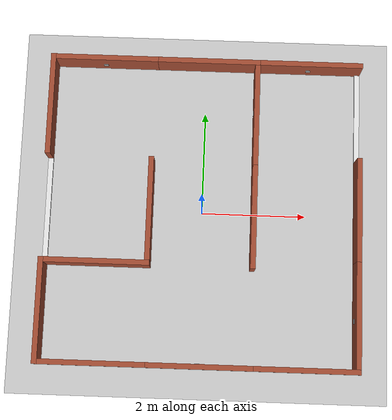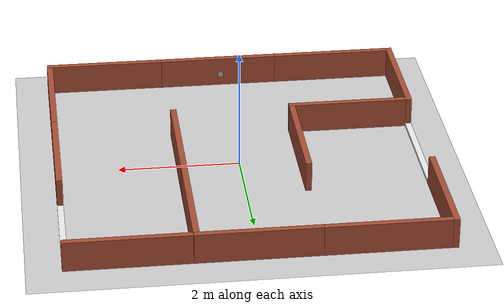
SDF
<sdf version="1.6">
 <world name="default">
  <light name="sun" type="directional">
   <pose>0 0 10 0 -0 0</pose>
   <diffuse>0.8 0.8 0.8 1</diffuse>
   <specular>0.2 0.2 0.2 1</specular>
   <attenuation>
    <range>1000</range>
    <constant>0.9</constant>
    <linear>0.01</linear>
    <quadratic>0.001</quadratic>
   </attenuation>
   <direction>-0.5 0.1 -0.9</direction>
  </light>
  <model name="ground_plane">
   <static>1</static>
   <link name="link">
    <collision name="collision">
     <geometry><plane><normal>0 0 1</normal><size>100 100</size></plane></geometry>
     <surface>
      <contact><collide_bitmask>65535</collide_bitmask></contact>
      <friction><ode><mu>100</mu><mu2>50</mu2></ode></friction>
     </surface>
    </collision>
    <visual name="visual">
     <cast_shadows>0</cast_shadows>
     <geometry><plane><normal>0 0 1</normal><size>100 100</size></plane></geometry>
     <material>
      <script><uri>file://media/materials/scripts/gazebo.material</uri><name>Gazebo/Grey</name></script>
     </material>
    </visual>
   </link>
  </model>
  <gravity>0 0 -9.8</gravity>
  <magnetic_field>6e-06 2.3e-05 -4.2e-05</magnetic_field>
  <atmosphere type="adiabatic"/>
  <physics name="default_physics" default="0" type="ode">
   <max_step_size>0.001</max_step_size>
   <real_time_factor>1</real_time_factor>
   <real_time_update_rate>1000</real_time_update_rate>
  </physics>
  <scene><ambient>0.4 0.4 0.4 1</ambient><background>0.7 0.7 0.7 1</background><shadows>1</shadows></scene>
  <audio><device>default</device></audio>
  <spherical_coordinates>
   <surface_model>EARTH_WGS84</surface_model>
   <latitude_deg>0</latitude_deg>
   <longitude_deg>0</longitude_deg>
   <elevation>0</elevation>
   <heading_deg>0</heading_deg>
  </spherical_coordinates>
  <model name="ar">
   <link name="link_0">
    <inertial>
     <mass>1</mass>
     <inertia>
      <ixx>0.166667</ixx>
      <ixy>0</ixy>
      <ixz>0</ixz>
      <iyy>0.166667</iyy>
      <iyz>0</iyz>
      <izz>0.166667</izz>
     </inertia>
    </inertial>
    <visual name="visual">
     <geometry><mesh><uri>file://meshes/ar1.dae</uri><scale>1 1 1</scale></mesh></geometry>
     <material>
      <lighting>1</lighting>
      <script><uri>file://media/materials/scripts/ArTag4.material</uri><name>RoboTont/ArTag4</name></script>
      <shader type="vertex"><normal_map>__default__</normal_map></shader>
      <ambient>0.3 0.3 0.3 1</ambient>
      <diffuse>0.7 0.7 0.7 1</diffuse>
      <specular>0.01 0.01 0.01 1</specular>
      <emissive>0.5 0.5 0.5 1</emissive>
     </material>
    </visual>
    <collision name="collision">
     <geometry><mesh><uri>file://meshes/ar1.dae</uri><scale>1 1 1</scale></mesh></geometry>
     <surface>
      <friction>
       <ode><mu>1</mu><mu2>1</mu2><fdir1>0 0 0</fdir1><slip1>0</slip1><slip2>0</slip2></ode>
       <torsional>
        <coefficient>1</coefficient>
        <patch_radius>0</patch_radius>
        <surface_radius>0</surface_radius>
        <use_patch_radius>1</use_patch_radius>
        <ode><slip>0</slip></ode>
       </torsional>
      </friction>
      <bounce><restitution_coefficient>0</restitution_coefficient><threshold>1e+06</threshold></bounce>
      <contact>
       <collide_without_contact>0</collide_without_contact>
       <collide_without_contact_bitmask>1</collide_without_contact_bitmask>
       <collide_bitmask>1</collide_bitmask>
       <ode>
        <soft_cfm>0</soft_cfm>
        <soft_erp>0.2</soft_erp>
        <kp>1e+13</kp>
        <kd>1</kd>
        <max_vel>0.01</max_vel>
        <min_depth>0</min_depth>
       </ode>
       <bullet>
        <split_impulse>1</split_impulse>
        <split_impulse_penetration_threshold>-0.01</split_impulse_penetration_threshold>
        <soft_cfm>0</soft_cfm>
        <soft_erp>0.2</soft_erp>
        <kp>1e+13</kp>
        <kd>1</kd>
       </bullet>
      </contact>
     </surface>
    </collision>
   </link>
   <static>1</static>
   <pose>2.94 -2 0.2 0 -0 0</pose>
  </model>
  <model name="minimaze">
   <link name="link_0">
    <inertial>
     <mass>1</mass>
     <inertia>
      <ixx>0.166667</ixx>
      <ixy>0</ixy>
      <ixz>0</ixz>
      <iyy>0.166667</iyy>
      <iyz>0</iyz>
      <izz>0.166667</izz>
     </inertia>
    </inertial>
    <pose>-2.95321 -1.925 0 0 -0 0</pose>
    <visual name="visual">
     <geometry><mesh><uri>file://meshes/bricks1.dae</uri><scale>1 1 1</scale></mesh></geometry>
     <material>
      <lighting>1</lighting>
      <script>
       <uri>file://media/materials/scripts/WhiteBricks.material</uri>
       <name>RoboTont/WhiteBricks</name>
      </script>
      <shader type="vertex"><normal_map>__default__</normal_map></shader>
      <ambient>0.3 0.3 0.3 1</ambient>
      <diffuse>0.7 0.7 0.7 1</diffuse>
      <specular>0.01 0.01 0.01 1</specular>
      <emissive>0.5 0.5 0.5 1</emissive>
     </material>
    </visual>
    <collision name="collision">
     <geometry><mesh><uri>file://meshes/bricks1.dae</uri><scale>1 1 1</scale></mesh></geometry>
     <surface>
      <friction>
       <ode><mu>1</mu><mu2>1</mu2><fdir1>0 0 0</fdir1><slip1>0</slip1><slip2>0</slip2></ode>
       <torsional>
        <coefficient>1</coefficient>
        <patch_radius>0</patch_radius>
        <surface_radius>0</surface_radius>
        <use_patch_radius>1</use_patch_radius>
        <ode><slip>0</slip></ode>
       </torsional>
      </friction>
      <bounce><restitution_coefficient>0</restitution_coefficient><threshold>1e+06</threshold></bounce>
      <contact>
       <collide_without_contact>0</collide_without_contact>
       <collide_without_contact_bitmask>1</collide_without_contact_bitmask>
       <collide_bitmask>1</collide_bitmask>
       <ode>
        <soft_cfm>0</soft_cfm>
        <soft_erp>0.2</soft_erp>
        <kp>1e+13</kp>
        <kd>1</kd>
        <max_vel>0.01</max_vel>
        <min_depth>0</min_depth>
       </ode>
       <bullet>
        <split_impulse>1</split_impulse>
        <split_impulse_penetration_threshold>-0.01</split_impulse_penetration_threshold>
        <soft_cfm>0</soft_cfm>
        <soft_erp>0.2</soft_erp>
        <kp>1e+13</kp>
        <kd>1</kd>
       </bullet>
      </contact>
     </surface>
    </collision>
   </link>
   <link name="link_0_0">
    <inertial>
     <mass>0.00194483</mass>
     <inertia>
      <ixx>0.00047544</ixx>
      <ixy>0</ixy>
      <ixz>0</ixz>
      <iyy>4.8e-07</iyy>
      <iyz>0</iyz>
      <izz>0.00047572</izz>
     </inertia>
    </inertial>
    <pose>-2.95321 0.074599 -0.227011 -3.8e-05 -1e-05 0</pose>
    <visual name="visual">
     <geometry><box><size>0.1 2 0.05</size></box></geometry>
     <material>
      <lighting>1</lighting>
      <script><uri>file://media/materials/scripts/gazebo.material</uri><name>Gazebo/White</name></script>
      <shader type="vertex"><normal_map>__default__</normal_map></shader>
      <ambient>0.3 0.3 0.3 1</ambient>
      <diffuse>0.7 0.7 0.7 1</diffuse>
      <specular>0.01 0.01 0.01 1</specular>
      <emissive>0.4 0.4 0.4 1</emissive>
     </material>
    </visual>
    <collision name="collision">
     <geometry><box><size>0.099999 2 0.05</size></box></geometry>
     <surface>
      <friction>
       <ode><mu>1</mu><mu2>1</mu2><fdir1>0 0 0</fdir1><slip1>0</slip1><slip2>0</slip2></ode>
       <torsional>
        <coefficient>1</coefficient>
        <patch_radius>0</patch_radius>
        <surface_radius>0</surface_radius>
        <use_patch_radius>1</use_patch_radius>
        <ode><slip>0</slip></ode>
       </torsional>
      </friction>
      <bounce><restitution_coefficient>0</restitution_coefficient><threshold>1e+06</threshold></bounce>
      <contact>
       <collide_without_contact>0</collide_without_contact>
       <collide_without_contact_bitmask>1</collide_without_contact_bitmask>
       <collide_bitmask>1</collide_bitmask>
       <ode>
        <soft_cfm>0</soft_cfm>
        <soft_erp>0.2</soft_erp>
        <kp>1e+13</kp>
        <kd>1</kd>
        <max_vel>0.01</max_vel>
        <min_depth>0</min_depth>
       </ode>
       <bullet>
        <split_impulse>1</split_impulse>
        <split_impulse_penetration_threshold>-0.01</split_impulse_penetration_threshold>
        <soft_cfm>0</soft_cfm>
        <soft_erp>0.2</soft_erp>
        <kp>1e+13</kp>
        <kd>1</kd>
       </bullet>
      </contact>
     </surface>
    </collision>
   </link>
   <link name="link_0_0_clone">
    <inertial>
     <mass>0.00177554</mass>
     <inertia>
      <ixx>0.00049366</ixx>
      <ixy>0</ixy>
      <ixz>0</ixz>
      <iyy>3.8e-07</iyy>
      <iyz>0</iyz>
      <izz>0.00049331</izz>
     </inertia>
    </inertial>
    <pose>3.04679 2.07373 -0.227011 -7.6e-05 -2e-05 -0</pose>
    <visual name="visual_0">
     <geometry><box><size>0.1 1.801 0.05</size></box></geometry>
     <material>
      <lighting>1</lighting>
      <script><uri>file://media/materials/scripts/gazebo.material</uri><name>Gazebo/White</name></script>
      <shader type="vertex"><normal_map>__default__</normal_map></shader>
      <ambient>0.3 0.3 0.3 1</ambient>
      <diffuse>0.7 0.7 0.7 1</diffuse>
      <specular>0.01 0.01 0.01 1</specular>
      <emissive>0.4 0.4 0.4 1</emissive>
     </material>
    </visual>
    <collision name="collision">
     <geometry><box><size>0.1 1.801 0.05</size></box></geometry>
     <surface>
      <friction>
       <ode><mu>1</mu><mu2>1</mu2><fdir1>0 0 0</fdir1><slip1>0</slip1><slip2>0</slip2></ode>
       <torsional>
        <coefficient>1</coefficient>
        <patch_radius>0</patch_radius>
        <surface_radius>0</surface_radius>
        <use_patch_radius>1</use_patch_radius>
        <ode><slip>0</slip></ode>
       </torsional>
      </friction>
      <bounce><restitution_coefficient>0</restitution_coefficient><threshold>1e+06</threshold></bounce>
      <contact>
       <collide_without_contact>0</collide_without_contact>
       <collide_without_contact_bitmask>1</collide_without_contact_bitmask>
       <collide_bitmask>1</collide_bitmask>
       <ode>
        <soft_cfm>0</soft_cfm>
        <soft_erp>0.2</soft_erp>
        <kp>1e+13</kp>
        <kd>1</kd>
        <max_vel>0.01</max_vel>
        <min_depth>0</min_depth>
       </ode>
       <bullet>
        <split_impulse>1</split_impulse>
        <split_impulse_penetration_threshold>-0.01</split_impulse_penetration_threshold>
        <soft_cfm>0</soft_cfm>
        <soft_erp>0.2</soft_erp>
        <kp>1e+13</kp>
        <kd>1</kd>
       </bullet>
      </contact>
     </surface>
    </collision>
   </link>
   <link name="link_0_clone">
    <inertial>
     <mass>1</mass>
     <inertia>
      <ixx>0.166667</ixx>
      <ixy>0</ixy>
      <ixz>0</ixz>
      <iyy>0.166667</iyy>
      <iyz>0</iyz>
      <izz>0.166667</izz>
     </inertia>
    </inertial>
    <pose>-2.95321 2.075 0 0 -0 0</pose>
    <visual name="visual">
     <geometry><mesh><uri>file://meshes/bricks1.dae</uri><scale>1 1 1</scale></mesh></geometry>
     <material>
      <lighting>1</lighting>
      <script>
       <uri>file://media/materials/scripts/WhiteBricks.material</uri>
       <name>RoboTont/WhiteBricks</name>
      </script>
      <shader type="vertex"><normal_map>__default__</normal_map></shader>
      <ambient>0.3 0.3 0.3 1</ambient>
      <diffuse>0.7 0.7 0.7 1</diffuse>
      <specular>0.01 0.01 0.01 1</specular>
      <emissive>0.5 0.5 0.5 1</emissive>
     </material>
    </visual>
    <collision name="collision">
     <geometry><mesh><uri>file://meshes/bricks1.dae</uri><scale>1 1 1</scale></mesh></geometry>
     <surface>
      <friction>
       <ode><mu>1</mu><mu2>1</mu2><fdir1>0 0 0</fdir1><slip1>0</slip1><slip2>0</slip2></ode>
       <torsional>
        <coefficient>1</coefficient>
        <patch_radius>0</patch_radius>
        <surface_radius>0</surface_radius>
        <use_patch_radius>1</use_patch_radius>
        <ode><slip>0</slip></ode>
       </torsional>
      </friction>
      <bounce><restitution_coefficient>0</restitution_coefficient><threshold>1e+06</threshold></bounce>
      <contact>
       <collide_without_contact>0</collide_without_contact>
       <collide_without_contact_bitmask>1</collide_without_contact_bitmask>
       <collide_bitmask>1</collide_bitmask>
       <ode>
        <soft_cfm>0</soft_cfm>
        <soft_erp>0.2</soft_erp>
        <kp>1e+13</kp>
        <kd>1</kd>
        <max_vel>0.01</max_vel>
        <min_depth>0</min_depth>
       </ode>
       <bullet>
        <split_impulse>1</split_impulse>
        <split_impulse_penetration_threshold>-0.01</split_impulse_penetration_threshold>
        <soft_cfm>0</soft_cfm>
        <soft_erp>0.2</soft_erp>
        <kp>1e+13</kp>
        <kd>1</kd>
       </bullet>
      </contact>
     </surface>
    </collision>
   </link>
   <link name="link_0_clone_0">
    <inertial>
     <mass>1</mass>
     <inertia>
      <ixx>0.166667</ixx>
      <ixy>0</ixy>
      <ixz>0</ixz>
      <iyy>0.166667</iyy>
      <iyz>0</iyz>
      <izz>0.166667</izz>
     </inertia>
    </inertial>
    <pose>3.04679 -1.825 -0 0 -0 0</pose>
    <visual name="visual">
     <geometry><mesh><uri>file://meshes/bricks1.dae</uri><scale>1 1 1</scale></mesh></geometry>
     <material>
      <lighting>1</lighting>
      <script>
       <uri>file://media/materials/scripts/WhiteBricks.material</uri>
       <name>RoboTont/WhiteBricks</name>
      </script>
      <shader type="vertex"><normal_map>__default__</normal_map></shader>
      <ambient>0.3 0.3 0.3 1</ambient>
      <diffuse>0.7 0.7 0.7 1</diffuse>
      <specular>0.01 0.01 0.01 1</specular>
      <emissive>0.5 0.5 0.5 1</emissive>
     </material>
    </visual>
    <collision name="collision">
     <geometry><mesh><uri>file://meshes/bricks1.dae</uri><scale>1 1 1</scale></mesh></geometry>
     <surface>
      <friction>
       <ode><mu>1</mu><mu2>1</mu2><fdir1>0 0 0</fdir1><slip1>0</slip1><slip2>0</slip2></ode>
       <torsional>
        <coefficient>1</coefficient>
        <patch_radius>0</patch_radius>
        <surface_radius>0</surface_radius>
        <use_patch_radius>1</use_patch_radius>
        <ode><slip>0</slip></ode>
       </torsional>
      </friction>
      <bounce><restitution_coefficient>0</restitution_coefficient><threshold>1e+06</threshold></bounce>
      <contact>
       <collide_without_contact>0</collide_without_contact>
       <collide_without_contact_bitmask>1</collide_without_contact_bitmask>
       <collide_bitmask>1</collide_bitmask>
       <ode>
        <soft_cfm>0</soft_cfm>
        <soft_erp>0.2</soft_erp>
        <kp>1e+13</kp>
        <kd>1</kd>
        <max_vel>0.01</max_vel>
        <min_depth>0</min_depth>
       </ode>
       <bullet>
        <split_impulse>1</split_impulse>
        <split_impulse_penetration_threshold>-0.01</split_impulse_penetration_threshold>
        <soft_cfm>0</soft_cfm>
        <soft_erp>0.2</soft_erp>
        <kp>1e+13</kp>
        <kd>1</kd>
       </bullet>
      </contact>
     </surface>
    </collision>
   </link>
   <link name="link_0_clone_1">
    <inertial>
     <mass>1</mass>
     <inertia>
      <ixx>0.166667</ixx>
      <ixy>0</ixy>
      <ixz>0</ixz>
      <iyy>0.166667</iyy>
      <iyz>0</iyz>
      <izz>0.166667</izz>
     </inertia>
    </inertial>
    <pose>3.04679 0.175 0 0 -0 0</pose>
    <visual name="visual">
     <geometry><mesh><uri>file://meshes/bricks1.dae</uri><scale>1 1 1</scale></mesh></geometry>
     <material>
      <lighting>1</lighting>
      <script>
       <uri>file://media/materials/scripts/WhiteBricks.material</uri>
       <name>RoboTont/WhiteBricks</name>
      </script>
      <shader type="vertex"><normal_map>__default__</normal_map></shader>
      <ambient>0.3 0.3 0.3 1</ambient>
      <diffuse>0.7 0.7 0.7 1</diffuse>
      <specular>0.01 0.01 0.01 1</specular>
      <emissive>0.5 0.5 0.5 1</emissive>
     </material>
    </visual>
    <collision name="collision">
     <geometry><mesh><uri>file://meshes/bricks1.dae</uri><scale>1 1 1</scale></mesh></geometry>
     <surface>
      <friction>
       <ode><mu>1</mu><mu2>1</mu2><fdir1>0 0 0</fdir1><slip1>0</slip1><slip2>0</slip2></ode>
       <torsional>
        <coefficient>1</coefficient>
        <patch_radius>0</patch_radius>
        <surface_radius>0</surface_radius>
        <use_patch_radius>1</use_patch_radius>
        <ode><slip>0</slip></ode>
       </torsional>
      </friction>
      <bounce><restitution_coefficient>0</restitution_coefficient><threshold>1e+06</threshold></bounce>
      <contact>
       <collide_without_contact>0</collide_without_contact>
       <collide_without_contact_bitmask>1</collide_without_contact_bitmask>
       <collide_bitmask>1</collide_bitmask>
       <ode>
        <soft_cfm>0</soft_cfm>
        <soft_erp>0.2</soft_erp>
        <kp>1e+13</kp>
        <kd>1</kd>
        <max_vel>0.01</max_vel>
        <min_depth>0</min_depth>
       </ode>
       <bullet>
        <split_impulse>1</split_impulse>
        <split_impulse_penetration_threshold>-0.01</split_impulse_penetration_threshold>
        <soft_cfm>0</soft_cfm>
        <soft_erp>0.2</soft_erp>
        <kp>1e+13</kp>
        <kd>1</kd>
       </bullet>
      </contact>
     </surface>
    </collision>
   </link>
   <link name="link_0_clone_1_clone">
    <inertial>
     <mass>1</mass>
     <inertia>
      <ixx>0.166667</ixx>
      <ixy>0</ixy>
      <ixz>0</ixz>
      <iyy>0.166667</iyy>
      <iyz>0</iyz>
      <izz>0.166667</izz>
     </inertia>
    </inertial>
    <pose>1.04679 1.975 -0 0 -0 0</pose>
    <visual name="visual">
     <geometry><mesh><uri>file://meshes/bricks1.dae</uri><scale>1 1 1</scale></mesh></geometry>
     <material>
      <lighting>1</lighting>
      <script>
       <uri>file://media/materials/scripts/WhiteBricks.material</uri>
       <name>RoboTont/WhiteBricks</name>
      </script>
      <shader type="vertex"><normal_map>__default__</normal_map></shader>
      <ambient>0.3 0.3 0.3 1</ambient>
      <diffuse>0.7 0.7 0.7 1</diffuse>
      <specular>0.01 0.01 0.01 1</specular>
      <emissive>0.5 0.5 0.5 1</emissive>
     </material>
    </visual>
    <collision name="collision">
     <geometry><mesh><uri>file://meshes/bricks1.dae</uri><scale>1 1 1</scale></mesh></geometry>
     <surface>
      <friction>
       <ode><mu>1</mu><mu2>1</mu2><fdir1>0 0 0</fdir1><slip1>0</slip1><slip2>0</slip2></ode>
       <torsional>
        <coefficient>1</coefficient>
        <patch_radius>0</patch_radius>
        <surface_radius>0</surface_radius>
        <use_patch_radius>1</use_patch_radius>
        <ode><slip>0</slip></ode>
       </torsional>
      </friction>
      <bounce><restitution_coefficient>0</restitution_coefficient><threshold>1e+06</threshold></bounce>
      <contact>
       <collide_without_contact>0</collide_without_contact>
       <collide_without_contact_bitmask>1</collide_without_contact_bitmask>
       <collide_bitmask>1</collide_bitmask>
       <ode>
        <soft_cfm>0</soft_cfm>
        <soft_erp>0.2</soft_erp>
        <kp>1e+13</kp>
        <kd>1</kd>
        <max_vel>0.01</max_vel>
        <min_depth>0</min_depth>
       </ode>
       <bullet>
        <split_impulse>1</split_impulse>
        <split_impulse_penetration_threshold>-0.01</split_impulse_penetration_threshold>
        <soft_cfm>0</soft_cfm>
        <soft_erp>0.2</soft_erp>
        <kp>1e+13</kp>
        <kd>1</kd>
       </bullet>
      </contact>
     </surface>
    </collision>
   </link>
   <link name="link_0_clone_1_clone_0">
    <inertial>
     <mass>1</mass>
     <inertia>
      <ixx>0.166667</ixx>
      <ixy>0</ixy>
      <ixz>0</ixz>
      <iyy>0.166667</iyy>
      <iyz>0</iyz>
      <izz>0.166667</izz>
     </inertia>
    </inertial>
    <pose>1.04679 -0.025 0 0 -0 0</pose>
    <visual name="visual">
     <geometry><mesh><uri>file://meshes/bricks1.dae</uri><scale>1 1 1</scale></mesh></geometry>
     <material>
      <lighting>1</lighting>
      <script>
       <uri>file://media/materials/scripts/WhiteBricks.material</uri>
       <name>RoboTont/WhiteBricks</name>
      </script>
      <shader type="vertex"><normal_map>__default__</normal_map></shader>
      <ambient>0.3 0.3 0.3 1</ambient>
      <diffuse>0.7 0.7 0.7 1</diffuse>
      <specular>0.01 0.01 0.01 1</specular>
      <emissive>0.5 0.5 0.5 1</emissive>
     </material>
    </visual>
    <collision name="collision">
     <geometry><mesh><uri>file://meshes/bricks1.dae</uri><scale>1 1 1</scale></mesh></geometry>
     <surface>
      <friction>
       <ode><mu>1</mu><mu2>1</mu2><fdir1>0 0 0</fdir1><slip1>0</slip1><slip2>0</slip2></ode>
       <torsional>
        <coefficient>1</coefficient>
        <patch_radius>0</patch_radius>
        <surface_radius>0</surface_radius>
        <use_patch_radius>1</use_patch_radius>
        <ode><slip>0</slip></ode>
       </torsional>
      </friction>
      <bounce><restitution_coefficient>0</restitution_coefficient><threshold>1e+06</threshold></bounce>
      <contact>
       <collide_without_contact>0</collide_without_contact>
       <collide_without_contact_bitmask>1</collide_without_contact_bitmask>
       <collide_bitmask>1</collide_bitmask>
       <ode>
        <soft_cfm>0</soft_cfm>
        <soft_erp>0.2</soft_erp>
        <kp>1e+13</kp>
        <kd>1</kd>
        <max_vel>0.01</max_vel>
        <min_depth>0</min_depth>
       </ode>
       <bullet>
        <split_impulse>1</split_impulse>
        <split_impulse_penetration_threshold>-0.01</split_impulse_penetration_threshold>
        <soft_cfm>0</soft_cfm>
        <soft_erp>0.2</soft_erp>
        <kp>1e+13</kp>
        <kd>1</kd>
       </bullet>
      </contact>
     </surface>
    </collision>
   </link>
   <link name="link_0_clone_1_clone_1">
    <inertial>
     <mass>1</mass>
     <inertia>
      <ixx>0.166667</ixx>
      <ixy>0</ixy>
      <ixz>0</ixz>
      <iyy>0.166667</iyy>
      <iyz>0</iyz>
      <izz>0.166667</izz>
     </inertia>
    </inertial>
    <pose>-0.953214 0.075 -0 0 -0 0</pose>
    <visual name="visual">
     <geometry><mesh><uri>file://meshes/bricks1.dae</uri><scale>1 1 1</scale></mesh></geometry>
     <material>
      <lighting>1</lighting>
      <script>
       <uri>file://media/materials/scripts/WhiteBricks.material</uri>
       <name>RoboTont/WhiteBricks</name>
      </script>
      <shader type="vertex"><normal_map>__default__</normal_map></shader>
      <ambient>0.3 0.3 0.3 1</ambient>
      <diffuse>0.7 0.7 0.7 1</diffuse>
      <specular>0.01 0.01 0.01 1</specular>
      <emissive>0.5 0.5 0.5 1</emissive>
     </material>
    </visual>
    <collision name="collision">
     <geometry><mesh><uri>file://meshes/bricks1.dae</uri><scale>1 1 1</scale></mesh></geometry>
     <surface>
      <friction>
       <ode><mu>1</mu><mu2>1</mu2><fdir1>0 0 0</fdir1><slip1>0</slip1><slip2>0</slip2></ode>
       <torsional>
        <coefficient>1</coefficient>
        <patch_radius>0</patch_radius>
        <surface_radius>0</surface_radius>
        <use_patch_radius>1</use_patch_radius>
        <ode><slip>0</slip></ode>
       </torsional>
      </friction>
      <bounce><restitution_coefficient>0</restitution_coefficient><threshold>1e+06</threshold></bounce>
      <contact>
       <collide_without_contact>0</collide_without_contact>
       <collide_without_contact_bitmask>1</collide_without_contact_bitmask>
       <collide_bitmask>1</collide_bitmask>
       <ode>
        <soft_cfm>0</soft_cfm>
        <soft_erp>0.2</soft_erp>
        <kp>1e+13</kp>
        <kd>1</kd>
        <max_vel>0.01</max_vel>
        <min_depth>0</min_depth>
       </ode>
       <bullet>
        <split_impulse>1</split_impulse>
        <split_impulse_penetration_threshold>-0.01</split_impulse_penetration_threshold>
        <soft_cfm>0</soft_cfm>
        <soft_erp>0.2</soft_erp>
        <kp>1e+13</kp>
        <kd>1</kd>
       </bullet>
      </contact>
     </surface>
    </collision>
   </link>
   <link name="link_1">
    <inertial>
     <mass>1</mass>
     <inertia>
      <ixx>0.166667</ixx>
      <ixy>0</ixy>
      <ixz>0</ixz>
      <iyy>0.166667</iyy>
      <iyz>0</iyz>
      <izz>0.166667</izz>
     </inertia>
    </inertial>
    <pose>-1.90321 -0.975 0 0 -0 0</pose>
    <visual name="visual">
     <geometry><mesh><uri>file://meshes/bricks2.dae</uri><scale>1 1 1</scale></mesh></geometry>
     <material>
      <lighting>1</lighting>
      <script>
       <uri>file://media/materials/scripts/WhiteBricks.material</uri>
       <name>RoboTont/WhiteBricks</name>
      </script>
      <shader type="vertex"><normal_map>__default__</normal_map></shader>
      <ambient>0.3 0.3 0.3 1</ambient>
      <diffuse>0.7 0.7 0.7 1</diffuse>
      <specular>0.01 0.01 0.01 1</specular>
      <emissive>0.5 0.5 0.5 1</emissive>
     </material>
    </visual>
    <collision name="collision">
     <geometry><mesh><uri>file://meshes/bricks2.dae</uri><scale>1 1 1</scale></mesh></geometry>
     <surface>
      <friction>
       <ode><mu>1</mu><mu2>1</mu2><fdir1>0 0 0</fdir1><slip1>0</slip1><slip2>0</slip2></ode>
       <torsional>
        <coefficient>1</coefficient>
        <patch_radius>0</patch_radius>
        <surface_radius>0</surface_radius>
        <use_patch_radius>1</use_patch_radius>
        <ode><slip>0</slip></ode>
       </torsional>
      </friction>
      <bounce><restitution_coefficient>0</restitution_coefficient><threshold>1e+06</threshold></bounce>
      <contact>
       <collide_without_contact>0</collide_without_contact>
       <collide_without_contact_bitmask>1</collide_without_contact_bitmask>
       <collide_bitmask>1</collide_bitmask>
       <ode>
        <soft_cfm>0</soft_cfm>
        <soft_erp>0.2</soft_erp>
        <kp>1e+13</kp>
        <kd>1</kd>
        <max_vel>0.01</max_vel>
        <min_depth>0</min_depth>
       </ode>
       <bullet>
        <split_impulse>1</split_impulse>
        <split_impulse_penetration_threshold>-0.01</split_impulse_penetration_threshold>
        <soft_cfm>0</soft_cfm>
        <soft_erp>0.2</soft_erp>
        <kp>1e+13</kp>
        <kd>1</kd>
       </bullet>
      </contact>
     </surface>
    </collision>
   </link>
   <link name="link_1_clone">
    <inertial>
     <mass>1</mass>
     <inertia>
      <ixx>0.166667</ixx>
      <ixy>0</ixy>
      <ixz>0</ixz>
      <iyy>0.166667</iyy>
      <iyz>0</iyz>
      <izz>0.166667</izz>
     </inertia>
    </inertial>
    <pose>-1.90321 -2.875 0 0 -0 0</pose>
    <visual name="visual">
     <geometry><mesh><uri>file://meshes/bricks2.dae</uri><scale>1 1 1</scale></mesh></geometry>
     <material>
      <lighting>1</lighting>
      <script>
       <uri>file://media/materials/scripts/WhiteBricks.material</uri>
       <name>RoboTont/WhiteBricks</name>
      </script>
      <shader type="vertex"><normal_map>__default__</normal_map></shader>
      <ambient>0.3 0.3 0.3 1</ambient>
      <diffuse>0.7 0.7 0.7 1</diffuse>
      <specular>0.01 0.01 0.01 1</specular>
      <emissive>0.5 0.5 0.5 1</emissive>
     </material>
    </visual>
    <collision name="collision">
     <geometry><mesh><uri>file://meshes/bricks2.dae</uri><scale>1 1 1</scale></mesh></geometry>
     <surface>
      <friction>
       <ode><mu>1</mu><mu2>1</mu2><fdir1>0 0 0</fdir1><slip1>0</slip1><slip2>0</slip2></ode>
       <torsional>
        <coefficient>1</coefficient>
        <patch_radius>0</patch_radius>
        <surface_radius>0</surface_radius>
        <use_patch_radius>1</use_patch_radius>
        <ode><slip>0</slip></ode>
       </torsional>
      </friction>
      <bounce><restitution_coefficient>0</restitution_coefficient><threshold>1e+06</threshold></bounce>
      <contact>
       <collide_without_contact>0</collide_without_contact>
       <collide_without_contact_bitmask>1</collide_without_contact_bitmask>
       <collide_bitmask>1</collide_bitmask>
       <ode>
        <soft_cfm>0</soft_cfm>
        <soft_erp>0.2</soft_erp>
        <kp>1e+13</kp>
        <kd>1</kd>
        <max_vel>0.01</max_vel>
        <min_depth>0</min_depth>
       </ode>
       <bullet>
        <split_impulse>1</split_impulse>
        <split_impulse_penetration_threshold>-0.01</split_impulse_penetration_threshold>
        <soft_cfm>0</soft_cfm>
        <soft_erp>0.2</soft_erp>
        <kp>1e+13</kp>
        <kd>1</kd>
       </bullet>
      </contact>
     </surface>
    </collision>
   </link>
   <link name="link_1_clone_0">
    <inertial>
     <mass>1</mass>
     <inertia>
      <ixx>0.166667</ixx>
      <ixy>0</ixy>
      <ixz>0</ixz>
      <iyy>0.166667</iyy>
      <iyz>0</iyz>
      <izz>0.166667</izz>
     </inertia>
    </inertial>
    <pose>0.096786 -2.875 -0 0 -0 0</pose>
    <visual name="visual">
     <geometry><mesh><uri>file://meshes/bricks2.dae</uri><scale>1 1 1</scale></mesh></geometry>
     <material>
      <lighting>1</lighting>
      <script>
       <uri>file://media/materials/scripts/WhiteBricks.material</uri>
       <name>RoboTont/WhiteBricks</name>
      </script>
      <shader type="vertex"><normal_map>__default__</normal_map></shader>
      <ambient>0.3 0.3 0.3 1</ambient>
      <diffuse>0.7 0.7 0.7 1</diffuse>
      <specular>0.01 0.01 0.01 1</specular>
      <emissive>0.5 0.5 0.5 1</emissive>
     </material>
    </visual>
    <collision name="collision">
     <geometry><mesh><uri>file://meshes/bricks2.dae</uri><scale>1 1 1</scale></mesh></geometry>
     <surface>
      <friction>
       <ode><mu>1</mu><mu2>1</mu2><fdir1>0 0 0</fdir1><slip1>0</slip1><slip2>0</slip2></ode>
       <torsional>
        <coefficient>1</coefficient>
        <patch_radius>0</patch_radius>
        <surface_radius>0</surface_radius>
        <use_patch_radius>1</use_patch_radius>
        <ode><slip>0</slip></ode>
       </torsional>
      </friction>
      <bounce><restitution_coefficient>0</restitution_coefficient><threshold>1e+06</threshold></bounce>
      <contact>
       <collide_without_contact>0</collide_without_contact>
       <collide_without_contact_bitmask>1</collide_without_contact_bitmask>
       <collide_bitmask>1</collide_bitmask>
       <ode>
        <soft_cfm>0</soft_cfm>
        <soft_erp>0.2</soft_erp>
        <kp>1e+13</kp>
        <kd>1</kd>
        <max_vel>0.01</max_vel>
        <min_depth>0</min_depth>
       </ode>
       <bullet>
        <split_impulse>1</split_impulse>
        <split_impulse_penetration_threshold>-0.01</split_impulse_penetration_threshold>
        <soft_cfm>0</soft_cfm>
        <soft_erp>0.2</soft_erp>
        <kp>1e+13</kp>
        <kd>1</kd>
       </bullet>
      </contact>
     </surface>
    </collision>
   </link>
   <link name="link_1_clone_1">
    <inertial>
     <mass>1</mass>
     <inertia>
      <ixx>0.166667</ixx>
      <ixy>0</ixy>
      <ixz>0</ixz>
      <iyy>0.166667</iyy>
      <iyz>0</iyz>
      <izz>0.166667</izz>
     </inertia>
    </inertial>
    <pose>2.09679 -2.875 -0 0 -0 0</pose>
    <visual name="visual">
     <geometry><mesh><uri>file://meshes/bricks2.dae</uri><scale>1 1 1</scale></mesh></geometry>
     <material>
      <lighting>1</lighting>
      <script>
       <uri>file://media/materials/scripts/WhiteBricks.material</uri>
       <name>RoboTont/WhiteBricks</name>
      </script>
      <shader type="vertex"><normal_map>__default__</normal_map></shader>
      <ambient>0.3 0.3 0.3 1</ambient>
      <diffuse>0.7 0.7 0.7 1</diffuse>
      <specular>0.01 0.01 0.01 1</specular>
      <emissive>0.5 0.5 0.5 1</emissive>
     </material>
    </visual>
    <collision name="collision">
     <geometry><mesh><uri>file://meshes/bricks2.dae</uri><scale>1 1 1</scale></mesh></geometry>
     <surface>
      <friction>
       <ode><mu>1</mu><mu2>1</mu2><fdir1>0 0 0</fdir1><slip1>0</slip1><slip2>0</slip2></ode>
       <torsional>
        <coefficient>1</coefficient>
        <patch_radius>0</patch_radius>
        <surface_radius>0</surface_radius>
        <use_patch_radius>1</use_patch_radius>
        <ode><slip>0</slip></ode>
       </torsional>
      </friction>
      <bounce><restitution_coefficient>0</restitution_coefficient><threshold>1e+06</threshold></bounce>
      <contact>
       <collide_without_contact>0</collide_without_contact>
       <collide_without_contact_bitmask>1</collide_without_contact_bitmask>
       <collide_bitmask>1</collide_bitmask>
       <ode>
        <soft_cfm>0</soft_cfm>
        <soft_erp>0.2</soft_erp>
        <kp>1e+13</kp>
        <kd>1</kd>
        <max_vel>0.01</max_vel>
        <min_depth>0</min_depth>
       </ode>
       <bullet>
        <split_impulse>1</split_impulse>
        <split_impulse_penetration_threshold>-0.01</split_impulse_penetration_threshold>
        <soft_cfm>0</soft_cfm>
        <soft_erp>0.2</soft_erp>
        <kp>1e+13</kp>
        <kd>1</kd>
       </bullet>
      </contact>
     </surface>
    </collision>
   </link>
   <link name="link_1_clone_clone">
    <inertial>
     <mass>1</mass>
     <inertia>
      <ixx>0.166667</ixx>
      <ixy>0</ixy>
      <ixz>0</ixz>
      <iyy>0.166667</iyy>
      <iyz>0</iyz>
      <izz>0.166667</izz>
     </inertia>
    </inertial>
    <pose>-1.90321 3.025 0 0 -0 0</pose>
    <visual name="visual">
     <geometry><mesh><uri>file://meshes/bricks2.dae</uri><scale>1 1 1</scale></mesh></geometry>
     <material>
      <lighting>1</lighting>
      <script>
       <uri>file://media/materials/scripts/WhiteBricks.material</uri>
       <name>RoboTont/WhiteBricks</name>
      </script>
      <shader type="vertex"><normal_map>__default__</normal_map></shader>
      <ambient>0.3 0.3 0.3 1</ambient>
      <diffuse>0.7 0.7 0.7 1</diffuse>
      <specular>0.01 0.01 0.01 1</specular>
      <emissive>0.5 0.5 0.5 1</emissive>
     </material>
    </visual>
    <collision name="collision">
     <geometry><mesh><uri>file://meshes/bricks2.dae</uri><scale>1 1 1</scale></mesh></geometry>
     <surface>
      <friction>
       <ode><mu>1</mu><mu2>1</mu2><fdir1>0 0 0</fdir1><slip1>0</slip1><slip2>0</slip2></ode>
       <torsional>
        <coefficient>1</coefficient>
        <patch_radius>0</patch_radius>
        <surface_radius>0</surface_radius>
        <use_patch_radius>1</use_patch_radius>
        <ode><slip>0</slip></ode>
       </torsional>
      </friction>
      <bounce><restitution_coefficient>0</restitution_coefficient><threshold>1e+06</threshold></bounce>
      <contact>
       <collide_without_contact>0</collide_without_contact>
       <collide_without_contact_bitmask>1</collide_without_contact_bitmask>
       <collide_bitmask>1</collide_bitmask>
       <ode>
        <soft_cfm>0</soft_cfm>
        <soft_erp>0.2</soft_erp>
        <kp>1e+13</kp>
        <kd>1</kd>
        <max_vel>0.01</max_vel>
        <min_depth>0</min_depth>
       </ode>
       <bullet>
        <split_impulse>1</split_impulse>
        <split_impulse_penetration_threshold>-0.01</split_impulse_penetration_threshold>
        <soft_cfm>0</soft_cfm>
        <soft_erp>0.2</soft_erp>
        <kp>1e+13</kp>
        <kd>1</kd>
       </bullet>
      </contact>
     </surface>
    </collision>
   </link>
   <link name="link_1_clone_clone_0">
    <inertial>
     <mass>1</mass>
     <inertia>
      <ixx>0.166667</ixx>
      <ixy>0</ixy>
      <ixz>0</ixz>
      <iyy>0.166667</iyy>
      <iyz>0</iyz>
      <izz>0.166667</izz>
     </inertia>
    </inertial>
    <pose>0.091786 3.025 -0 0 -0 0</pose>
    <visual name="visual">
     <geometry><mesh><uri>file://meshes/bricks2.dae</uri><scale>1 1 1</scale></mesh></geometry>
     <material>
      <lighting>1</lighting>
      <script>
       <uri>file://media/materials/scripts/WhiteBricks.material</uri>
       <name>RoboTont/WhiteBricks</name>
      </script>
      <shader type="vertex"><normal_map>__default__</normal_map></shader>
      <ambient>0.3 0.3 0.3 1</ambient>
      <diffuse>0.7 0.7 0.7 1</diffuse>
      <specular>0.01 0.01 0.01 1</specular>
      <emissive>0.5 0.5 0.5 1</emissive>
     </material>
    </visual>
    <collision name="collision">
     <geometry><mesh><uri>file://meshes/bricks2.dae</uri><scale>1 1 1</scale></mesh></geometry>
     <surface>
      <friction>
       <ode><mu>1</mu><mu2>1</mu2><fdir1>0 0 0</fdir1><slip1>0</slip1><slip2>0</slip2></ode>
       <torsional>
        <coefficient>1</coefficient>
        <patch_radius>0</patch_radius>
        <surface_radius>0</surface_radius>
        <use_patch_radius>1</use_patch_radius>
        <ode><slip>0</slip></ode>
       </torsional>
      </friction>
      <bounce><restitution_coefficient>0</restitution_coefficient><threshold>1e+06</threshold></bounce>
      <contact>
       <collide_without_contact>0</collide_without_contact>
       <collide_without_contact_bitmask>1</collide_without_contact_bitmask>
       <collide_bitmask>1</collide_bitmask>
       <ode>
        <soft_cfm>0</soft_cfm>
        <soft_erp>0.2</soft_erp>
        <kp>1e+13</kp>
        <kd>1</kd>
        <max_vel>0.01</max_vel>
        <min_depth>0</min_depth>
       </ode>
       <bullet>
        <split_impulse>1</split_impulse>
        <split_impulse_penetration_threshold>-0.01</split_impulse_penetration_threshold>
        <soft_cfm>0</soft_cfm>
        <soft_erp>0.2</soft_erp>
        <kp>1e+13</kp>
        <kd>1</kd>
       </bullet>
      </contact>
     </surface>
    </collision>
   </link>
   <link name="link_1_clone_clone_1">
    <inertial>
     <mass>1</mass>
     <inertia>
      <ixx>0.166667</ixx>
      <ixy>0</ixy>
      <ixz>0</ixz>
      <iyy>0.166667</iyy>
      <iyz>0</iyz>
      <izz>0.166667</izz>
     </inertia>
    </inertial>
    <pose>2.09679 3.025 0 0 -0 0</pose>
    <visual name="visual">
     <geometry><mesh><uri>file://meshes/bricks2.dae</uri><scale>1 1 1</scale></mesh></geometry>
     <material>
      <lighting>1</lighting>
      <script>
       <uri>file://media/materials/scripts/WhiteBricks.material</uri>
       <name>RoboTont/WhiteBricks</name>
      </script>
      <shader type="vertex"><normal_map>__default__</normal_map></shader>
      <ambient>0.3 0.3 0.3 1</ambient>
      <diffuse>0.7 0.7 0.7 1</diffuse>
      <specular>0.01 0.01 0.01 1</specular>
      <emissive>0.5 0.5 0.5 1</emissive>
     </material>
    </visual>
    <collision name="collision">
     <geometry><mesh><uri>file://meshes/bricks2.dae</uri><scale>1 1 1</scale></mesh></geometry>
     <surface>
      <friction>
       <ode><mu>1</mu><mu2>1</mu2><fdir1>0 0 0</fdir1><slip1>0</slip1><slip2>0</slip2></ode>
       <torsional>
        <coefficient>1</coefficient>
        <patch_radius>0</patch_radius>
        <surface_radius>0</surface_radius>
        <use_patch_radius>1</use_patch_radius>
        <ode><slip>0</slip></ode>
       </torsional>
      </friction>
      <bounce><restitution_coefficient>0</restitution_coefficient><threshold>1e+06</threshold></bounce>
      <contact>
       <collide_without_contact>0</collide_without_contact>
       <collide_without_contact_bitmask>1</collide_without_contact_bitmask>
       <collide_bitmask>1</collide_bitmask>
       <ode>
        <soft_cfm>0</soft_cfm>
        <soft_erp>0.2</soft_erp>
        <kp>1e+13</kp>
        <kd>1</kd>
        <max_vel>0.01</max_vel>
        <min_depth>0</min_depth>
       </ode>
       <bullet>
        <split_impulse>1</split_impulse>
        <split_impulse_penetration_threshold>-0.01</split_impulse_penetration_threshold>
        <soft_cfm>0</soft_cfm>
        <soft_erp>0.2</soft_erp>
        <kp>1e+13</kp>
        <kd>1</kd>
       </bullet>
      </contact>
     </surface>
    </collision>
   </link>
   <static>1</static>
   <pose>-0.05293 -0.07039 0.245283 3.8e-05 1e-05 0</pose>
  </model>
  <model name="ar_clone">
   <link name="link_0">
    <inertial>
     <mass>1</mass>
     <inertia>
      <ixx>0.166667</ixx>
      <ixy>0</ixy>
      <ixz>0</ixz>
      <iyy>0.166667</iyy>
      <iyz>0</iyz>
      <izz>0.166667</izz>
     </inertia>
    </inertial>
    <visual name="visual">
     <geometry><mesh><uri>file://meshes/ar1.dae</uri><scale>1 1 1</scale></mesh></geometry>
     <material>
      <lighting>1</lighting>
      <script><uri>file://media/materials/scripts/ArTag2.material</uri><name>RoboTont/ArTag2</name></script>
      <shader type="vertex"><normal_map>__default__</normal_map></shader>
      <ambient>0.3 0.3 0.3 1</ambient>
      <diffuse>0.7 0.7 0.7 1</diffuse>
      <specular>0.01 0.01 0.01 1</specular>
      <emissive>0.5 0.5 0.5 1</emissive>
     </material>
    </visual>
    <collision name="collision">
     <geometry><mesh><uri>file://meshes/ar1.dae</uri><scale>1 1 1</scale></mesh></geometry>
     <surface>
      <friction>
       <ode><mu>1</mu><mu2>1</mu2><fdir1>0 0 0</fdir1><slip1>0</slip1><slip2>0</slip2></ode>
       <torsional>
        <coefficient>1</coefficient>
        <patch_radius>0</patch_radius>
        <surface_radius>0</surface_radius>
        <use_patch_radius>1</use_patch_radius>
        <ode><slip>0</slip></ode>
       </torsional>
      </friction>
      <bounce><restitution_coefficient>0</restitution_coefficient><threshold>1e+06</threshold></bounce>
      <contact>
       <collide_without_contact>0</collide_without_contact>
       <collide_without_contact_bitmask>1</collide_without_contact_bitmask>
       <collide_bitmask>1</collide_bitmask>
       <ode>
        <soft_cfm>0</soft_cfm>
        <soft_erp>0.2</soft_erp>
        <kp>1e+13</kp>
        <kd>1</kd>
        <max_vel>0.01</max_vel>
        <min_depth>0</min_depth>
       </ode>
       <bullet>
        <split_impulse>1</split_impulse>
        <split_impulse_penetration_threshold>-0.01</split_impulse_penetration_threshold>
        <soft_cfm>0</soft_cfm>
        <soft_erp>0.2</soft_erp>
        <kp>1e+13</kp>
        <kd>1</kd>
       </bullet>
      </contact>
     </surface>
    </collision>
   </link>
   <static>1</static>
   <pose>0.94 2 0.2 0 -0 0</pose>
  </model>
  <model name="ar_clone_0">
   <link name="link_0">
    <inertial>
     <mass>1</mass>
     <inertia>
      <ixx>0.166667</ixx>
      <ixy>0</ixy>
      <ixz>0</ixz>
      <iyy>0.166667</iyy>
      <iyz>0</iyz>
      <izz>0.166667</izz>
     </inertia>
    </inertial>
    <visual name="visual">
     <geometry><mesh><uri>file://meshes/ar1.dae</uri><scale>1 1 1</scale></mesh></geometry>
     <material>
      <lighting>1</lighting>
      <script><uri>file://media/materials/scripts/ArTag1.material</uri><name>RoboTont/ArTag1</name></script>
      <shader type="vertex"><normal_map>__default__</normal_map></shader>
      <ambient>0.3 0.3 0.3 1</ambient>
      <diffuse>0.7 0.7 0.7 1</diffuse>
      <specular>0.01 0.01 0.01 1</specular>
      <emissive>0.5 0.5 0.5 1</emissive>
     </material>
    </visual>
    <collision name="collision">
     <geometry><mesh><uri>file://meshes/ar1.dae</uri><scale>1 1 1</scale></mesh></geometry>
     <surface>
      <friction>
       <ode><mu>1</mu><mu2>1</mu2><fdir1>0 0 0</fdir1><slip1>0</slip1><slip2>0</slip2></ode>
       <torsional>
        <coefficient>1</coefficient>
        <patch_radius>0</patch_radius>
        <surface_radius>0</surface_radius>
        <use_patch_radius>1</use_patch_radius>
        <ode><slip>0</slip></ode>
       </torsional>
      </friction>
      <bounce><restitution_coefficient>0</restitution_coefficient><threshold>1e+06</threshold></bounce>
      <contact>
       <collide_without_contact>0</collide_without_contact>
       <collide_without_contact_bitmask>1</collide_without_contact_bitmask>
       <collide_bitmask>1</collide_bitmask>
       <ode>
        <soft_cfm>0</soft_cfm>
        <soft_erp>0.2</soft_erp>
        <kp>1e+13</kp>
        <kd>1</kd>
        <max_vel>0.01</max_vel>
        <min_depth>0</min_depth>
       </ode>
       <bullet>
        <split_impulse>1</split_impulse>
        <split_impulse_penetration_threshold>-0.01</split_impulse_penetration_threshold>
        <soft_cfm>0</soft_cfm>
        <soft_erp>0.2</soft_erp>
        <kp>1e+13</kp>
        <kd>1</kd>
       </bullet>
      </contact>
     </surface>
    </collision>
   </link>
   <static>1</static>
   <pose>-2 2.9 0.2 0 -0 1.570796</pose>
  </model>
  <model name="ar_clone_0_clone">
   <link name="link_0">
    <inertial>
     <mass>1</mass>
     <inertia>
      <ixx>0.166667</ixx>
      <ixy>0</ixy>
      <ixz>0</ixz>
      <iyy>0.166667</iyy>
      <iyz>0</iyz>
      <izz>0.166667</izz>
     </inertia>
    </inertial>
    <visual name="visual">
     <geometry><mesh><uri>file://meshes/ar1.dae</uri><scale>1 1 1</scale></mesh></geometry>
     <material>
      <lighting>1</lighting>
      <script><uri>file://media/materials/scripts/ArTag5.material</uri><name>RoboTont/ArTag5</name></script>
      <shader type="vertex"><normal_map>__default__</normal_map></shader>
      <ambient>0.3 0.3 0.3 1</ambient>
      <diffuse>0.7 0.7 0.7 1</diffuse>
      <specular>0.01 0.01 0.01 1</specular>
      <emissive>0.5 0.5 0.5 1</emissive>
     </material>
    </visual>
    <collision name="collision">
     <geometry><mesh><uri>file://meshes/ar1.dae</uri><scale>1 1 1</scale></mesh></geometry>
     <surface>
      <friction>
       <ode><mu>1</mu><mu2>1</mu2><fdir1>0 0 0</fdir1><slip1>0</slip1><slip2>0</slip2></ode>
       <torsional>
        <coefficient>1</coefficient>
        <patch_radius>0</patch_radius>
        <surface_radius>0</surface_radius>
        <use_patch_radius>1</use_patch_radius>
        <ode><slip>0</slip></ode>
       </torsional>
      </friction>
      <bounce><restitution_coefficient>0</restitution_coefficient><threshold>1e+06</threshold></bounce>
      <contact>
       <collide_without_contact>0</collide_without_contact>
       <collide_without_contact_bitmask>1</collide_without_contact_bitmask>
       <collide_bitmask>1</collide_bitmask>
       <ode>
        <soft_cfm>0</soft_cfm>
        <soft_erp>0.2</soft_erp>
        <kp>1e+13</kp>
        <kd>1</kd>
        <max_vel>0.01</max_vel>
        <min_depth>0</min_depth>
       </ode>
       <bullet>
        <split_impulse>1</split_impulse>
        <split_impulse_penetration_threshold>-0.01</split_impulse_penetration_threshold>
        <soft_cfm>0</soft_cfm>
        <soft_erp>0.2</soft_erp>
        <kp>1e+13</kp>
        <kd>1</kd>
       </bullet>
      </contact>
     </surface>
    </collision>
   </link>
   <static>1</static>
   <pose>2 2.9 0.2 0 -0 1.570796</pose>
  </model>
  <model name="ar_clone_0_clone_0">
   <link name="link_0">
    <inertial>
     <mass>1</mass>
     <inertia>
      <ixx>0.166667</ixx>
      <ixy>0</ixy>
      <ixz>0</ixz>
      <iyy>0.166667</iyy>
      <iyz>0</iyz>
      <izz>0.166667</izz>
     </inertia>
    </inertial>
    <visual name="visual">
     <geometry><mesh><uri>file://meshes/ar1.dae</uri><scale>1 1 1</scale></mesh></geometry>
     <material>
      <lighting>1</lighting>
      <script><uri>file://media/materials/scripts/ArTag3.material</uri><name>RoboTont/ArTag3</name></script>
      <shader type="vertex"><normal_map>__default__</normal_map></shader>
      <ambient>0.3 0.3 0.3 1</ambient>
      <diffuse>0.7 0.7 0.7 1</diffuse>
      <specular>0.01 0.01 0.01 1</specular>
      <emissive>0.5 0.5 0.5 1</emissive>
     </material>
    </visual>
    <collision name="collision">
     <geometry><mesh><uri>file://meshes/ar1.dae</uri><scale>1 1 1</scale></mesh></geometry>
     <surface>
      <friction>
       <ode><mu>1</mu><mu2>1</mu2><fdir1>0 0 0</fdir1><slip1>0</slip1><slip2>0</slip2></ode>
       <torsional>
        <coefficient>1</coefficient>
        <patch_radius>0</patch_radius>
        <surface_radius>0</surface_radius>
        <use_patch_radius>1</use_patch_radius>
        <ode><slip>0</slip></ode>
       </torsional>
      </friction>
      <bounce><restitution_coefficient>0</restitution_coefficient><threshold>1e+06</threshold></bounce>
      <contact>
       <collide_without_contact>0</collide_without_contact>
       <collide_without_contact_bitmask>1</collide_without_contact_bitmask>
       <collide_bitmask>1</collide_bitmask>
       <ode>
        <soft_cfm>0</soft_cfm>
        <soft_erp>0.2</soft_erp>
        <kp>1e+13</kp>
        <kd>1</kd>
        <max_vel>0.01</max_vel>
        <min_depth>0</min_depth>
       </ode>
       <bullet>
        <split_impulse>1</split_impulse>
        <split_impulse_penetration_threshold>-0.01</split_impulse_penetration_threshold>
        <soft_cfm>0</soft_cfm>
        <soft_erp>0.2</soft_erp>
        <kp>1e+13</kp>
        <kd>1</kd>
       </bullet>
      </contact>
     </surface>
    </collision>
   </link>
   <static>1</static>
   <pose>0 -2.89 0.2 0 -0 1.570796</pose>
  </model>
 </world>
</sdf>
